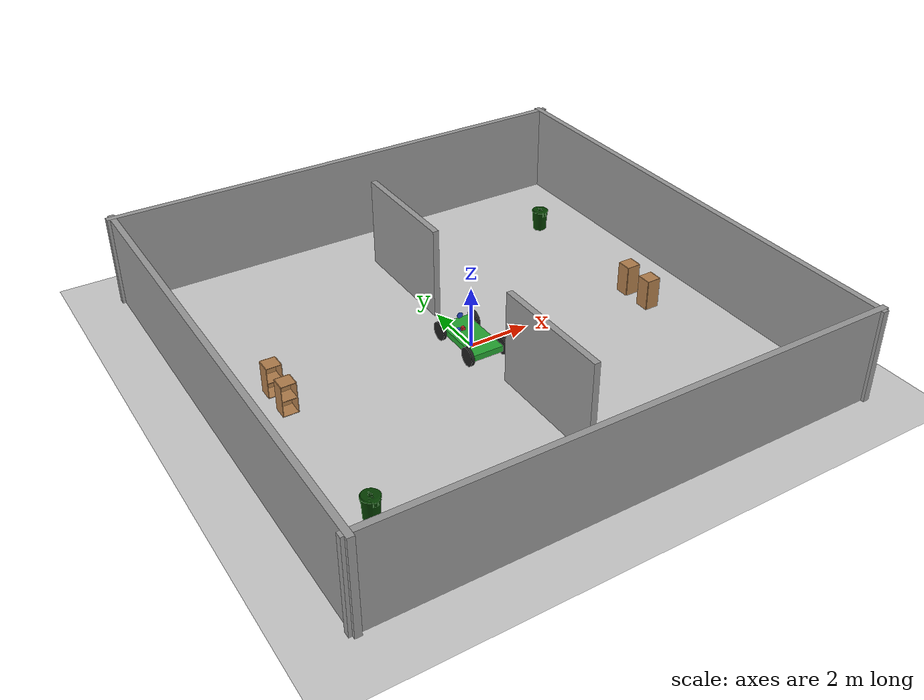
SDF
<sdf version="1.6">
 <world name="complex_warehouse">
  <include><uri>model://sun</uri></include>
  <include><uri>model://ground_plane</uri></include>
  <physics name="default_physics" default="0" type="ode">
   <max_step_size>0.001</max_step_size>
   <real_time_factor>1</real_time_factor>
   <real_time_update_rate>1000</real_time_update_rate>
  </physics>
  <model name="warehouse_walls">
   <static>true</static>
   <link name="walls">
    <collision name="north_col">
     <pose>0 8 1.5 0 0 0</pose>
     <geometry><box><size>16.4 0.2 3</size></box></geometry>
    </collision>
    <visual name="north_vis">
     <pose>0 8 1.5 0 0 0</pose>
     <geometry><box><size>16.4 0.2 3</size></box></geometry>
     <material>
      <script><uri>file://media/materials/scripts/gazebo.material</uri><name>Gazebo/Grey</name></script>
     </material>
    </visual>
    <collision name="south_col">
     <pose>0 -8 1.5 0 0 0</pose>
     <geometry><box><size>16.4 0.2 3</size></box></geometry>
    </collision>
    <visual name="south_vis">
     <pose>0 -8 1.5 0 0 0</pose>
     <geometry><box><size>16.4 0.2 3</size></box></geometry>
     <material>
      <script><uri>file://media/materials/scripts/gazebo.material</uri><name>Gazebo/Grey</name></script>
     </material>
    </visual>
    <collision name="east_col">
     <pose>8 0 1.5 0 0 0</pose>
     <geometry><box><size>0.2 16.4 3</size></box></geometry>
    </collision>
    <visual name="east_vis">
     <pose>8 0 1.5 0 0 0</pose>
     <geometry><box><size>0.2 16.4 3</size></box></geometry>
     <material>
      <script><uri>file://media/materials/scripts/gazebo.material</uri><name>Gazebo/Grey</name></script>
     </material>
    </visual>
    <collision name="west_col">
     <pose>-8 0 1.5 0 0 0</pose>
     <geometry><box><size>0.2 16.4 3</size></box></geometry>
    </collision>
    <visual name="west_vis">
     <pose>-8 0 1.5 0 0 0</pose>
     <geometry><box><size>0.2 16.4 3</size></box></geometry>
     <material>
      <script><uri>file://media/materials/scripts/gazebo.material</uri><name>Gazebo/Grey</name></script>
     </material>
    </visual>
   </link>
  </model>
  <model name="internal_wall_north">
   <static>true</static>
   <pose>0 4 1.5 0 0 0</pose>
   <link name="link">
    <collision name="col"><geometry><box><size>0.2 4.0 3</size></box></geometry></collision>
    <visual name="vis">
     <geometry><box><size>0.2 4.0 3</size></box></geometry>
     <material>
      <script><uri>file://media/materials/scripts/gazebo.material</uri><name>Gazebo/Grey</name></script>
     </material>
    </visual>
   </link>
  </model>
  <model name="internal_wall_south">
   <static>true</static>
   <pose>0 -4 1.5 0 0 0</pose>
   <link name="link">
    <collision name="col"><geometry><box><size>0.2 4.0 3</size></box></geometry></collision>
    <visual name="vis">
     <geometry><box><size>0.2 4.0 3</size></box></geometry>
     <material>
      <script><uri>file://media/materials/scripts/gazebo.material</uri><name>Gazebo/Grey</name></script>
     </material>
    </visual>
   </link>
  </model>
  <include><name>cabinet_0</name><uri>model://cabinet</uri><pose>-6 0 0 0 0 1.5708</pose></include>
  <include><name>cabinet_1</name><uri>model://cabinet</uri><pose>-6 1 0 0 0 1.5708</pose></include>
  <include><name>cabinet_2</name><uri>model://cabinet</uri><pose>6 0 0 0 0 -1.5708</pose></include>
  <include><name>cabinet_3</name><uri>model://cabinet</uri><pose>6 -1 0 0 0 -1.5708</pose></include>
  <include><name>cart_center</name><uri>model://utility_cart</uri><pose>0 0 0 0 0 1.5708</pose></include>
  <include><name>trash_0</name><uri>model://first_2015_trash_can</uri><pose>-6 -5 0 0 0 0</pose></include>
  <include><name>trash_1</name><uri>model://first_2015_trash_can</uri><pose>6 5 0 0 0 0</pose></include>
 </world>
</sdf>

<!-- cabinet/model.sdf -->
<sdf version="1.5">
  <model name="cabinet">
    <static>true</static>
    <link name="cabinet_bottom_plate">
      <inertial>
        <pose>0 0 -1 0 0 0</pose>
        <inertia>
          <ixx>2.050000</ixx>
          <ixy>0</ixy>
          <ixz>0</ixz>
          <iyy>2.050000</iyy>
          <iyz>0</iyz>
          <izz>2.050000</izz>
        </inertia>
        <mass>25.000000</mass>
      </inertial>
      <collision name="cabinet_bottom_plate_geom">
        <pose>0 0 0.010000 0 0 0</pose>
        <geometry>
          <box>
            <size>0.450000 0.450000 0.020000</size>
          </box>
        </geometry>
      </collision>
      <visual name="cabinet_bottom_plate_geom_visual">
        <pose>0 0 0.010000 0 0 0</pose>
        <geometry>
          <box>
            <size>0.450000 0.450000 0.020000</size>
          </box>
        </geometry>
        <material>
          <script>
            <uri>model://media/materials/scripts/gazebo.material</uri>
            <name>Gazebo/Wood</name>
          </script>
        </material>
      </visual>
      <collision name="cabinet_bottom_plate_geom_cabinet_back_plate">
        <pose>0.235000 0 0.510000 0 0 0</pose>
        <geometry>
          <box>
            <size>0.020000 0.450000 1.020000</size>
          </box>
        </geometry>
      </collision>
      <visual name="cabinet_bottom_plate_geom_cabinet_back_plate_visual">
        <pose>0.235000 0 0.510000 0 0 0</pose>
        <geometry>
          <box>
            <size>0.020000 0.450000 1.020000</size>
          </box>
        </geometry>
        <material>
          <script>
            <uri>model://media/materials/scripts/gazebo.material</uri>
            <name>Gazebo/Wood</name>
          </script>
        </material>
      </visual>
      <collision name="cabinet_bottom_plate_geom_cabinet_left_plate">
        <pose>0 0.235000 0.510000 0 0 0</pose>
        <geometry>
          <box>
            <size>0.450000 0.020000 1.020000</size>
          </box>
        </geometry>
      </collision>
      <visual name="cabinet_bottom_plate_geom_cabinet_left_plate_visual">
        <pose>0 0.235000 0.510000 0 0 0</pose>
        <geometry>
          <box>
            <size>0.450000 0.020000 1.020000</size>
          </box>
        </geometry>
        <material>
          <script>
            <uri>model://media/materials/scripts/gazebo.material</uri>
            <name>Gazebo/Wood</name>
          </script>
        </material>
      </visual>
      <collision name="cabinet_bottom_plate_geom_cabinet_middle_plate">
        <pose>0 0 0.510000 0 0 0</pose>
        <geometry>
          <box>
            <size>0.450000 0.450000 0.020000</size>
          </box>
        </geometry>
      </collision>
      <visual name="cabinet_bottom_plate_geom_cabinet_middle_plate_visual">
        <pose>0 0 0.510000 0 0 0</pose>
        <geometry>
          <box>
            <size>0.450000 0.450000 0.020000</size>
          </box>
        </geometry>
        <material>
          <script>
            <uri>model://media/materials/scripts/gazebo.material</uri>
            <name>Gazebo/Wood</name>
          </script>
        </material>
      </visual>
      <collision name="cabinet_bottom_plate_geom_cabinet_right_plate">
        <pose>0 -0.235000 0.510000 0 0 0</pose>
        <geometry>
          <box>
            <size>0.450000 0.020000 1.020000</size>
          </box>
        </geometry>
      </collision>
      <visual name="cabinet_bottom_plate_geom_cabinet_right_plate_visual">
        <pose>0 -0.235000 0.510000 0 0 0</pose>
        <geometry>
          <box>
            <size>0.450000 0.020000 1.020000</size>
          </box>
        </geometry>
        <material>
          <script>
            <uri>model://media/materials/scripts/gazebo.material</uri>
            <name>Gazebo/Wood</name>
          </script>
        </material>
      </visual>
      <collision name="cabinet_bottom_plate_geom_cabinet_top_plate">
        <pose>0 0 1.010000 0 0 0</pose>
        <geometry>
          <box>
            <size>0.450000 0.450000 0.020000</size>
          </box>
        </geometry>
      </collision>
      <visual name="cabinet_bottom_plate_geom_cabinet_top_plate_visual">
        <pose>0 0 1.010000 0 0 0</pose>
        <geometry>
          <box>
            <size>0.450000 0.450000 0.020000</size>
          </box>
        </geometry>
        <material>
          <script>
            <uri>model://media/materials/scripts/gazebo.material</uri>
            <name>Gazebo/Wood</name>
          </script>
        </material>
      </visual>
    </link>
  </model>
</sdf>

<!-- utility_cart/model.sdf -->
<sdf version="1.5">
  <model name="utility_cart">
    <link name="chassis">
      <pose>0 0 0.3 0 0 0</pose>
      <collision name="collision">
        <geometry>
          <box>
            <size>2.0 1.0 0.2</size>
          </box>
        </geometry>
      </collision>
      <visual name="visual">
        <geometry>
          <box>
            <size>2.0 1.0 0.2</size>
          </box>
        </geometry>
        <material>
          <script>
            <uri>file://media/materials/scripts/gazebo.material</uri>
            <name>Gazebo/Green</name>
          </script>
        </material>
      </visual>
    </link>
    <link name="front_left_wheel">
      <pose>0.8 0.6 0.3 0 1.5707 1.5707</pose>
      <collision name="collision">
        <geometry>
          <cylinder>
            <radius>0.3</radius>
            <length>0.1</length>
          </cylinder>
        </geometry>
      </collision>
      <visual name="visual">
        <geometry>
          <cylinder>
            <radius>0.3</radius>
            <length>0.1</length>
          </cylinder>
        </geometry>
        <material>
          <script>
            <uri>file://media/materials/scripts/gazebo.material</uri>
            <name>Gazebo/Black</name>
          </script>
        </material>
      </visual>
    </link>
    <link name="front_right_wheel">
      <pose>0.8 -0.6 0.3 0 1.5707 1.5707</pose>
      <collision name="collision">
        <geometry>
          <cylinder>
            <radius>0.3</radius>
            <length>0.1</length>
          </cylinder>
        </geometry>
      </collision>
      <visual name="visual">
        <geometry>
          <cylinder>
            <radius>0.3</radius>
            <length>0.1</length>
          </cylinder>
        </geometry>
        <material>
          <script>
            <uri>file://media/materials/scripts/gazebo.material</uri>
            <name>Gazebo/Black</name>
          </script>
        </material>
      </visual>
    </link>
    <link name="back_right_wheel">
      <pose>-0.8 -0.6 0.3 0 1.5707 1.5707</pose>
      <collision name="collision">
        <geometry>
          <cylinder>
            <radius>0.3</radius>
            <length>0.1</length>
          </cylinder>
        </geometry>
      </collision>
      <visual name="visual">
        <geometry>
          <cylinder>
            <radius>0.3</radius>
            <length>0.1</length>
          </cylinder>
        </geometry>
        <material>
          <script>
            <uri>file://media/materials/scripts/gazebo.material</uri>
            <name>Gazebo/Black</name>
          </script>
        </material>
      </visual>
    </link>
    <link name="back_left_wheel">
      <pose>-0.8 0.6 0.3 0 1.5707 1.5707</pose>
      <collision name="collision">
        <geometry>
          <cylinder>
            <radius>0.3</radius>
            <length>0.1</length>
          </cylinder>
        </geometry>
      </collision>
      <visual name="visual">
        <geometry>
          <cylinder>
            <radius>0.3</radius>
            <length>0.1</length>
          </cylinder>
        </geometry>
        <material>
          <script>
            <uri>file://media/materials/scripts/gazebo.material</uri>
            <name>Gazebo/Black</name>
          </script>
        </material>
      </visual>
    </link>
    <link name="gas_pedal">
      <pose>0.3 0.1 0.5 0 0 0</pose>
      <collision name="collision">
        <geometry>
          <box>
            <size>0.1 0.1 0.1</size>
          </box>
        </geometry>
      </collision>
      <visual name="visual">
        <geometry>
          <box>
            <size>0.1 0.1 0.1</size>
          </box>
        </geometry>
        <material>
          <script>
            <uri>file://media/materials/scripts/gazebo.material</uri>
            <name>Gazebo/Red</name>
          </script>
        </material>
      </visual>
    </link>
    <link name="brake_pedal">
      <pose>0.3 0.25 0.5 0 0 0</pose>
      <collision name="collision">
        <geometry>
          <box>
            <size>0.1 0.1 0.1</size>
          </box>
        </geometry>
      </collision>
      <visual name="visual">
        <geometry>
          <box>
            <size>0.1 0.1 0.1</size>
          </box>
        </geometry>
        <material>
          <script>
            <uri>file://media/materials/scripts/gazebo.material</uri>
            <name>Gazebo/Blue</name>
          </script>
        </material>
      </visual>
    </link>
    <link name="steering_wheel">
      <pose>0.3 0.2 1.0 0 1.5707 0</pose>
      <collision name="collision">
        <geometry>
          <cylinder>
            <radius>0.1</radius>
            <length>0.01</length>
          </cylinder>
        </geometry>
      </collision>
      <visual name="visual">
        <geometry>
          <cylinder>
            <radius>0.1</radius>
            <length>0.01</length>
          </cylinder>
        </geometry>
        <material>
          <script>
            <uri>file://media/materials/scripts/gazebo.material</uri>
            <name>Gazebo/Blue</name>
          </script>
        </material>
      </visual>
    </link>
    <joint type="prismatic" name="gas_joint">
      <parent>chassis</parent>
      <child>gas_pedal</child>
      <axis>
        <xyz>1 0 0</xyz>
        <limit>
          <lower>0</lower>
          <upper>0.2</upper>
        </limit>
        <use_parent_model_frame>true</use_parent_model_frame>
      </axis>
    </joint>
    <joint type="prismatic" name="brake_joint">
      <parent>chassis</parent>
      <child>brake_pedal</child>
      <axis>
        <xyz>1 0 0</xyz>
        <limit>
          <lower>0</lower>
          <upper>0.2</upper>
        </limit>
        <use_parent_model_frame>true</use_parent_model_frame>
      </axis>
    </joint>
    <joint type="revolute" name="steering_joint">
      <parent>chassis</parent>
      <child>steering_wheel</child>
      <axis>
        <xyz>1 0 0</xyz>
        <limit>
          <lower>-7.853</lower>
          <upper>7.853</upper>
        </limit>
        <use_parent_model_frame>true</use_parent_model_frame>
      </axis>
    </joint>
    <joint type="revolute2" name="front_left_joint">
      <parent>chassis</parent>
      <child>front_left_wheel</child>
      <axis>
        <xyz>0 0 1</xyz>
        <limit>
          <lower>0</lower>
          <upper>0</upper>
        </limit>
        <use_parent_model_frame>true</use_parent_model_frame>
      </axis>
      <axis2>
        <xyz>0 1 0</xyz>
        <use_parent_model_frame>true</use_parent_model_frame>
      </axis2>
      <physics>
        <ode>
          <limit>
            <cfm>0.0</cfm>
            <erp>0.9</erp>
          </limit>
        </ode>
      </physics>
    </joint>
    <joint type="revolute2" name="front_right_joint">
      <parent>chassis</parent>
      <child>front_right_wheel</child>
      <axis>
        <xyz>0 0 1</xyz>
        <limit>
          <lower>0</lower>
          <upper>0</upper>
        </limit>
        <use_parent_model_frame>true</use_parent_model_frame>
      </axis>
      <axis2>
        <xyz>0 1 0</xyz>
        <use_parent_model_frame>true</use_parent_model_frame>
      </axis2>
      <physics>
        <ode>
          <limit>
            <cfm>0.0</cfm>
            <erp>0.9</erp>
          </limit>
        </ode>
      </physics>
    </joint>
    <joint type="revolute2" name="back_right_joint">
      <parent>chassis</parent>
      <child>back_right_wheel</child>
      <axis>
        <xyz>0 0 1</xyz>
        <limit>
          <lower>0</lower>
          <upper>0</upper>
        </limit>
        <use_parent_model_frame>true</use_parent_model_frame>
      </axis>
      <axis2>
        <xyz>0 1 0</xyz>
        <use_parent_model_frame>true</use_parent_model_frame>
      </axis2>
      <physics>
        <ode>
          <limit>
            <cfm>0.0</cfm>
            <erp>0.9</erp>
          </limit>
        </ode>
      </physics>
    </joint>
    <joint type="revolute2" name="back_left_joint">
      <parent>chassis</parent>
      <child>back_left_wheel</child>
      <axis>
        <xyz>0 0 1</xyz>
        <limit>
          <lower>0</lower>
          <upper>0</upper>
        </limit>
        <use_parent_model_frame>true</use_parent_model_frame>
      </axis>
      <axis2>
        <xyz>0 1 0</xyz>
        <use_parent_model_frame>true</use_parent_model_frame>
      </axis2>
      <physics>
        <ode>
          <limit>
            <cfm>0.0</cfm>
            <erp>0.9</erp>
          </limit>
        </ode>
      </physics>
    </joint>
    <plugin filename="libVehiclePlugin.so" name="vehicle">
      <!-- Joints for each wheel -->
      <front_left>front_left_joint</front_left>
      <front_right>front_right_joint</front_right>
      <back_left>back_left_joint</back_left>
      <back_right>back_right_joint</back_right>
      <!-- Joint which controls the gas -->
      <gas>gas_joint</gas>
      <!-- Joint which controls the gas -->
      <brake>brake_joint</brake>
      <!-- Joint which controls the steering -->
      <steering>steering_joint</steering>
      <!-- Power is multiplied by "gas" to determine force applied to wheels -->
      <front_power>10</front_power>
      <rear_power>10</rear_power>
      <!-- The angle range the front tires can turn for steering, in radians -->
      <tire_angle_range>0.5</tire_angle_range>
      <!-- Maximum speed for the car in meters/second -->
      <max_speed>10</max_speed>
      <!-- Factor for the down-force applied as the car travels faster -->
      <!-- A larger number increases the down force -->
      <aero_load>0.1</aero_load>
    </plugin>
  </model>
</sdf>

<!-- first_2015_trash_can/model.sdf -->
<sdf version="1.5">
  <model name="first_2015_trash_can">
    <link name="link">
      <inertial>
        <pose>0 0 0.3683 0 0 0</pose>
        <mass>4.83076</mass>
        <inertia>
          <ixx>0.281534052</ixx>
          <ixy>0</ixy>
          <ixz>0</ixz>
          <iyy>0.281534052</iyy>
          <iyz>0</iyz>
          <izz>0.126222831</izz>
        </inertia>
      </inertial>

      <visual name="visual">
        <geometry>
          <mesh>
            <uri>model://first_2015_trash_can/meshes/trash_can.dae</uri>
          </mesh>
        </geometry>
      </visual>

      <collision name="collision">
        <geometry>
          <mesh>
            <uri>model://first_2015_trash_can/meshes/trash_can.dae</uri>
          </mesh>
        </geometry>
      </collision>
    </link>
  </model>
</sdf>
